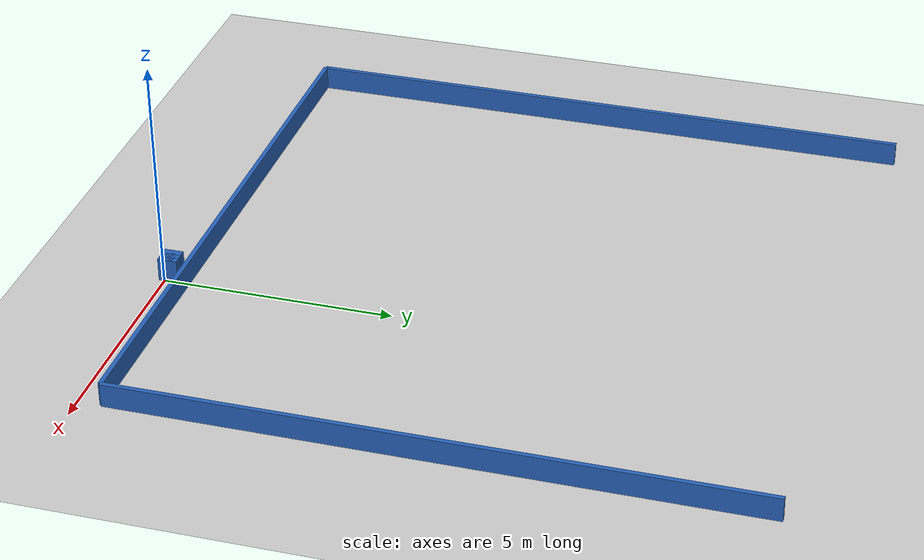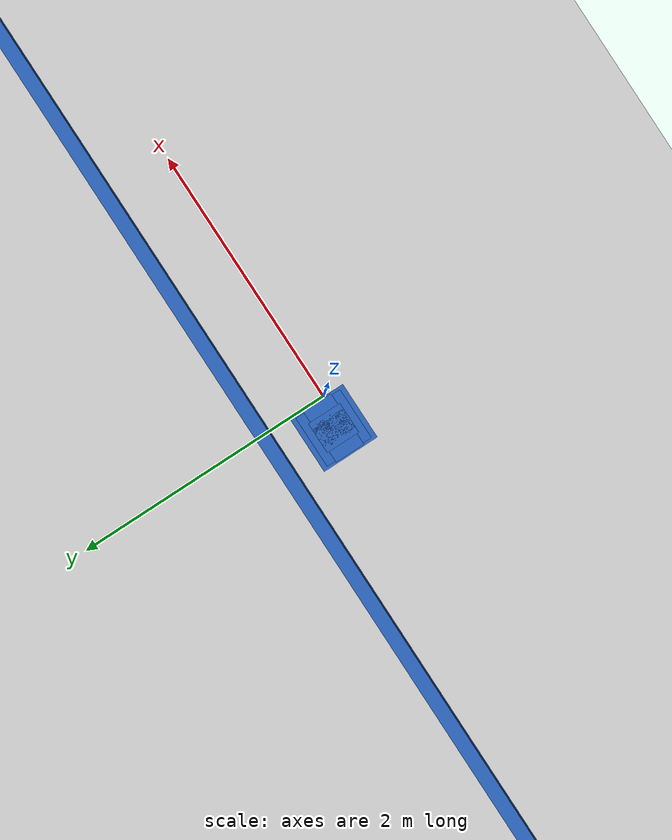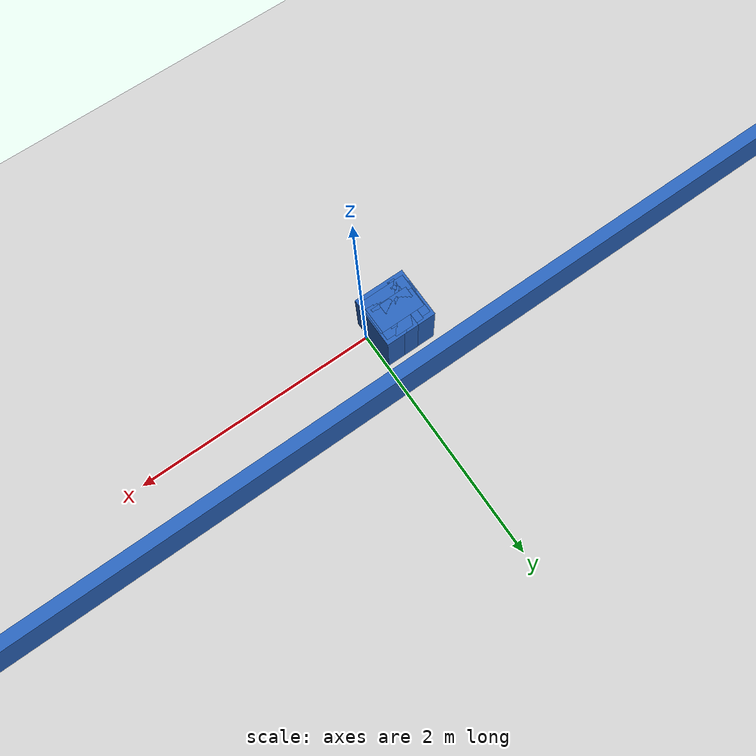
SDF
<?xml version="1.0" ?>
    <sdf version="1.5">
      <world name="default">
        <!-- A global light source -->
        <include>
          <uri>model://sun</uri>
        </include>
        <!-- A ground plane -->
        <include>
          <uri>model://ground_plane</uri>
        </include>

    <model name='libopen_space_final_T2B_79_93'>
      <static>1</static>
      <pose frame=''>-0.225000 0.075000 0.000000 0.000000 0.000000 0.000000</pose>
      <link name='link'>
        <inertial>
          <mass>1</mass>
          <inertia>
            <ixx>0.145833</ixx>
            <ixy>0</ixy>
            <ixz>0</ixz>
            <iyy>0.145833</iyy>
            <iyz>0</iyz>
            <izz>0.125</izz>
          </inertia>
        </inertial>
        <collision name='collision'>
          <geometry>
            <box>
              <size>0.23 0.25 1</size>
            </box>
          </geometry>
          <max_contacts>10</max_contacts>
          <surface>
            <contact>
              <ode/>
            </contact>
            <bounce/>
            <friction>
              <torsional>
                <ode/>
              </torsional>
              <ode/>
            </friction>
          </surface>
        </collision>
        <visual name='visual'>
          <geometry>
            <box>
              <size>0.23 0.25 1</size>
            </box>
          </geometry>
	    <material>
              <ambient>0.152000 0.379000 0.720000 1</ambient>
	      <diffuse>0.152000 0.379000 0.720000 1</diffuse>
          </material>
          <material>
            <script>
              <name>Gazebo/Grey</name>
              <uri>file://media/materials/scripts/gazebo.material</uri>
            </script>
          </material>
        </visual>
        <self_collide>0</self_collide>
        <kinematic>0</kinematic>
        <gravity>1</gravity>
      </link>
      <plugin name='libopen_space_final_T2B_79_93' filename='libopen_space_final_T2B_79_93.so'/>
    </model>

    <model name='libopen_space_final_T2B_119_99'>
      <static>1</static>
      <pose frame=''>-0.225000 0.075000 0.000000 0.000000 0.000000 0.000000</pose>
      <link name='link'>
        <inertial>
          <mass>1</mass>
          <inertia>
            <ixx>0.145833</ixx>
            <ixy>0</ixy>
            <ixz>0</ixz>
            <iyy>0.145833</iyy>
            <iyz>0</iyz>
            <izz>0.125</izz>
          </inertia>
        </inertial>
        <collision name='collision'>
          <geometry>
            <box>
              <size>0.40 0.22 1</size>
            </box>
          </geometry>
          <max_contacts>10</max_contacts>
          <surface>
            <contact>
              <ode/>
            </contact>
            <bounce/>
            <friction>
              <torsional>
                <ode/>
              </torsional>
              <ode/>
            </friction>
          </surface>
        </collision>
        <visual name='visual'>
          <geometry>
            <box>
              <size>0.40 0.22 1</size>
            </box>
          </geometry>
	    <material>
              <ambient>0.152000 0.379000 0.720000 1</ambient>
	      <diffuse>0.152000 0.379000 0.720000 1</diffuse>
          </material>
          <material>
            <script>
              <name>Gazebo/Grey</name>
              <uri>file://media/materials/scripts/gazebo.material</uri>
            </script>
          </material>
        </visual>
        <self_collide>0</self_collide>
        <kinematic>0</kinematic>
        <gravity>1</gravity>
      </link>
      <plugin name='libopen_space_final_T2B_119_99' filename='libopen_space_final_T2B_119_99.so'/>
    </model>

    <model name='libopen_space_final_T2B_85_62'>
      <static>1</static>
      <pose frame=''>-0.225000 0.075000 0.000000 0.000000 0.000000 0.000000</pose>
      <link name='link'>
        <inertial>
          <mass>1</mass>
          <inertia>
            <ixx>0.145833</ixx>
            <ixy>0</ixy>
            <ixz>0</ixz>
            <iyy>0.145833</iyy>
            <iyz>0</iyz>
            <izz>0.125</izz>
          </inertia>
        </inertial>
        <collision name='collision'>
          <geometry>
            <box>
              <size>0.38 0.35 1</size>
            </box>
          </geometry>
          <max_contacts>10</max_contacts>
          <surface>
            <contact>
              <ode/>
            </contact>
            <bounce/>
            <friction>
              <torsional>
                <ode/>
              </torsional>
              <ode/>
            </friction>
          </surface>
        </collision>
        <visual name='visual'>
          <geometry>
            <box>
              <size>0.38 0.35 1</size>
            </box>
          </geometry>
	    <material>
              <ambient>0.152000 0.379000 0.720000 1</ambient>
	      <diffuse>0.152000 0.379000 0.720000 1</diffuse>
          </material>
          <material>
            <script>
              <name>Gazebo/Grey</name>
              <uri>file://media/materials/scripts/gazebo.material</uri>
            </script>
          </material>
        </visual>
        <self_collide>0</self_collide>
        <kinematic>0</kinematic>
        <gravity>1</gravity>
      </link>
      <plugin name='libopen_space_final_T2B_85_62' filename='libopen_space_final_T2B_85_62.so'/>
    </model>

    <model name='libopen_space_final_T2B_80_70'>
      <static>1</static>
      <pose frame=''>-0.225000 0.075000 0.000000 0.000000 0.000000 0.000000</pose>
      <link name='link'>
        <inertial>
          <mass>1</mass>
          <inertia>
            <ixx>0.145833</ixx>
            <ixy>0</ixy>
            <ixz>0</ixz>
            <iyy>0.145833</iyy>
            <iyz>0</iyz>
            <izz>0.125</izz>
          </inertia>
        </inertial>
        <collision name='collision'>
          <geometry>
            <box>
              <size>0.42 0.42 1</size>
            </box>
          </geometry>
          <max_contacts>10</max_contacts>
          <surface>
            <contact>
              <ode/>
            </contact>
            <bounce/>
            <friction>
              <torsional>
                <ode/>
              </torsional>
              <ode/>
            </friction>
          </surface>
        </collision>
        <visual name='visual'>
          <geometry>
            <box>
              <size>0.42 0.42 1</size>
            </box>
          </geometry>
	    <material>
              <ambient>0.152000 0.379000 0.720000 1</ambient>
	      <diffuse>0.152000 0.379000 0.720000 1</diffuse>
          </material>
          <material>
            <script>
              <name>Gazebo/Grey</name>
              <uri>file://media/materials/scripts/gazebo.material</uri>
            </script>
          </material>
        </visual>
        <self_collide>0</self_collide>
        <kinematic>0</kinematic>
        <gravity>1</gravity>
      </link>
      <plugin name='libopen_space_final_T2B_80_70' filename='libopen_space_final_T2B_80_70.so'/>
    </model>

    <model name='libopen_space_final_T2B_127_53'>
      <static>1</static>
      <pose frame=''>-0.225000 0.075000 0.000000 0.000000 0.000000 0.000000</pose>
      <link name='link'>
        <inertial>
          <mass>1</mass>
          <inertia>
            <ixx>0.145833</ixx>
            <ixy>0</ixy>
            <ixz>0</ixz>
            <iyy>0.145833</iyy>
            <iyz>0</iyz>
            <izz>0.125</izz>
          </inertia>
        </inertial>
        <collision name='collision'>
          <geometry>
            <box>
              <size>0.17 0.16 1</size>
            </box>
          </geometry>
          <max_contacts>10</max_contacts>
          <surface>
            <contact>
              <ode/>
            </contact>
            <bounce/>
            <friction>
              <torsional>
                <ode/>
              </torsional>
              <ode/>
            </friction>
          </surface>
        </collision>
        <visual name='visual'>
          <geometry>
            <box>
              <size>0.17 0.16 1</size>
            </box>
          </geometry>
	    <material>
              <ambient>0.152000 0.379000 0.720000 1</ambient>
	      <diffuse>0.152000 0.379000 0.720000 1</diffuse>
          </material>
          <material>
            <script>
              <name>Gazebo/Grey</name>
              <uri>file://media/materials/scripts/gazebo.material</uri>
            </script>
          </material>
        </visual>
        <self_collide>0</self_collide>
        <kinematic>0</kinematic>
        <gravity>1</gravity>
      </link>
      <plugin name='libopen_space_final_T2B_127_53' filename='libopen_space_final_T2B_127_53.so'/>
    </model>

    <model name='libopen_space_final_T2B_67_46'>
      <static>1</static>
      <pose frame=''>-0.225000 0.075000 0.000000 0.000000 0.000000 0.000000</pose>
      <link name='link'>
        <inertial>
          <mass>1</mass>
          <inertia>
            <ixx>0.145833</ixx>
            <ixy>0</ixy>
            <ixz>0</ixz>
            <iyy>0.145833</iyy>
            <iyz>0</iyz>
            <izz>0.125</izz>
          </inertia>
        </inertial>
        <collision name='collision'>
          <geometry>
            <box>
              <size>0.15 0.24 1</size>
            </box>
          </geometry>
          <max_contacts>10</max_contacts>
          <surface>
            <contact>
              <ode/>
            </contact>
            <bounce/>
            <friction>
              <torsional>
                <ode/>
              </torsional>
              <ode/>
            </friction>
          </surface>
        </collision>
        <visual name='visual'>
          <geometry>
            <box>
              <size>0.15 0.24 1</size>
            </box>
          </geometry>
	    <material>
              <ambient>0.152000 0.379000 0.720000 1</ambient>
	      <diffuse>0.152000 0.379000 0.720000 1</diffuse>
          </material>
          <material>
            <script>
              <name>Gazebo/Grey</name>
              <uri>file://media/materials/scripts/gazebo.material</uri>
            </script>
          </material>
        </visual>
        <self_collide>0</self_collide>
        <kinematic>0</kinematic>
        <gravity>1</gravity>
      </link>
      <plugin name='libopen_space_final_T2B_67_46' filename='libopen_space_final_T2B_67_46.so'/>
    </model>

    <model name='libopen_space_final_T2B_66_3'>
      <static>1</static>
      <pose frame=''>-0.225000 0.075000 0.000000 0.000000 0.000000 0.000000</pose>
      <link name='link'>
        <inertial>
          <mass>1</mass>
          <inertia>
            <ixx>0.145833</ixx>
            <ixy>0</ixy>
            <ixz>0</ixz>
            <iyy>0.145833</iyy>
            <iyz>0</iyz>
            <izz>0.125</izz>
          </inertia>
        </inertial>
        <collision name='collision'>
          <geometry>
            <box>
              <size>0.31 0.17 1</size>
            </box>
          </geometry>
          <max_contacts>10</max_contacts>
          <surface>
            <contact>
              <ode/>
            </contact>
            <bounce/>
            <friction>
              <torsional>
                <ode/>
              </torsional>
              <ode/>
            </friction>
          </surface>
        </collision>
        <visual name='visual'>
          <geometry>
            <box>
              <size>0.31 0.17 1</size>
            </box>
          </geometry>
	    <material>
              <ambient>0.152000 0.379000 0.720000 1</ambient>
	      <diffuse>0.152000 0.379000 0.720000 1</diffuse>
          </material>
          <material>
            <script>
              <name>Gazebo/Grey</name>
              <uri>file://media/materials/scripts/gazebo.material</uri>
            </script>
          </material>
        </visual>
        <self_collide>0</self_collide>
        <kinematic>0</kinematic>
        <gravity>1</gravity>
      </link>
      <plugin name='libopen_space_final_T2B_66_3' filename='libopen_space_final_T2B_66_3.so'/>
    </model>

    <model name='libopen_space_final_T2B_126_41'>
      <static>1</static>
      <pose frame=''>-0.225000 0.075000 0.000000 0.000000 0.000000 0.000000</pose>
      <link name='link'>
        <inertial>
          <mass>1</mass>
          <inertia>
            <ixx>0.145833</ixx>
            <ixy>0</ixy>
            <ixz>0</ixz>
            <iyy>0.145833</iyy>
            <iyz>0</iyz>
            <izz>0.125</izz>
          </inertia>
        </inertial>
        <collision name='collision'>
          <geometry>
            <box>
              <size>0.12 0.42 1</size>
            </box>
          </geometry>
          <max_contacts>10</max_contacts>
          <surface>
            <contact>
              <ode/>
            </contact>
            <bounce/>
            <friction>
              <torsional>
                <ode/>
              </torsional>
              <ode/>
            </friction>
          </surface>
        </collision>
        <visual name='visual'>
          <geometry>
            <box>
              <size>0.12 0.42 1</size>
            </box>
          </geometry>
	    <material>
              <ambient>0.152000 0.379000 0.720000 1</ambient>
	      <diffuse>0.152000 0.379000 0.720000 1</diffuse>
          </material>
          <material>
            <script>
              <name>Gazebo/Grey</name>
              <uri>file://media/materials/scripts/gazebo.material</uri>
            </script>
          </material>
        </visual>
        <self_collide>0</self_collide>
        <kinematic>0</kinematic>
        <gravity>1</gravity>
      </link>
      <plugin name='libopen_space_final_T2B_126_41' filename='libopen_space_final_T2B_126_41.so'/>
    </model>

    <model name='libopen_space_final_T2B_112_81'>
      <static>1</static>
      <pose frame=''>-0.225000 0.075000 0.000000 0.000000 0.000000 0.000000</pose>
      <link name='link'>
        <inertial>
          <mass>1</mass>
          <inertia>
            <ixx>0.145833</ixx>
            <ixy>0</ixy>
            <ixz>0</ixz>
            <iyy>0.145833</iyy>
            <iyz>0</iyz>
            <izz>0.125</izz>
          </inertia>
        </inertial>
        <collision name='collision'>
          <geometry>
            <box>
              <size>0.24 0.38 1</size>
            </box>
          </geometry>
          <max_contacts>10</max_contacts>
          <surface>
            <contact>
              <ode/>
            </contact>
            <bounce/>
            <friction>
              <torsional>
                <ode/>
              </torsional>
              <ode/>
            </friction>
          </surface>
        </collision>
        <visual name='visual'>
          <geometry>
            <box>
              <size>0.24 0.38 1</size>
            </box>
          </geometry>
	    <material>
              <ambient>0.152000 0.379000 0.720000 1</ambient>
	      <diffuse>0.152000 0.379000 0.720000 1</diffuse>
          </material>
          <material>
            <script>
              <name>Gazebo/Grey</name>
              <uri>file://media/materials/scripts/gazebo.material</uri>
            </script>
          </material>
        </visual>
        <self_collide>0</self_collide>
        <kinematic>0</kinematic>
        <gravity>1</gravity>
      </link>
      <plugin name='libopen_space_final_T2B_112_81' filename='libopen_space_final_T2B_112_81.so'/>
    </model>

    <model name='libopen_space_final_T2B_83_17'>
      <static>1</static>
      <pose frame=''>-0.225000 0.075000 0.000000 0.000000 0.000000 0.000000</pose>
      <link name='link'>
        <inertial>
          <mass>1</mass>
          <inertia>
            <ixx>0.145833</ixx>
            <ixy>0</ixy>
            <ixz>0</ixz>
            <iyy>0.145833</iyy>
            <iyz>0</iyz>
            <izz>0.125</izz>
          </inertia>
        </inertial>
        <collision name='collision'>
          <geometry>
            <box>
              <size>0.37 0.22 1</size>
            </box>
          </geometry>
          <max_contacts>10</max_contacts>
          <surface>
            <contact>
              <ode/>
            </contact>
            <bounce/>
            <friction>
              <torsional>
                <ode/>
              </torsional>
              <ode/>
            </friction>
          </surface>
        </collision>
        <visual name='visual'>
          <geometry>
            <box>
              <size>0.37 0.22 1</size>
            </box>
          </geometry>
	    <material>
              <ambient>0.152000 0.379000 0.720000 1</ambient>
	      <diffuse>0.152000 0.379000 0.720000 1</diffuse>
          </material>
          <material>
            <script>
              <name>Gazebo/Grey</name>
              <uri>file://media/materials/scripts/gazebo.material</uri>
            </script>
          </material>
        </visual>
        <self_collide>0</self_collide>
        <kinematic>0</kinematic>
        <gravity>1</gravity>
      </link>
      <plugin name='libopen_space_final_T2B_83_17' filename='libopen_space_final_T2B_83_17.so'/>
    </model>

    <model name='libopen_space_final_T2B_71_69'>
      <static>1</static>
      <pose frame=''>-0.225000 0.075000 0.000000 0.000000 0.000000 0.000000</pose>
      <link name='link'>
        <inertial>
          <mass>1</mass>
          <inertia>
            <ixx>0.145833</ixx>
            <ixy>0</ixy>
            <ixz>0</ixz>
            <iyy>0.145833</iyy>
            <iyz>0</iyz>
            <izz>0.125</izz>
          </inertia>
        </inertial>
        <collision name='collision'>
          <geometry>
            <box>
              <size>0.20 0.29 1</size>
            </box>
          </geometry>
          <max_contacts>10</max_contacts>
          <surface>
            <contact>
              <ode/>
            </contact>
            <bounce/>
            <friction>
              <torsional>
                <ode/>
              </torsional>
              <ode/>
            </friction>
          </surface>
        </collision>
        <visual name='visual'>
          <geometry>
            <box>
              <size>0.20 0.29 1</size>
            </box>
          </geometry>
	    <material>
              <ambient>0.152000 0.379000 0.720000 1</ambient>
	      <diffuse>0.152000 0.379000 0.720000 1</diffuse>
          </material>
          <material>
            <script>
              <name>Gazebo/Grey</name>
              <uri>file://media/materials/scripts/gazebo.material</uri>
            </script>
          </material>
        </visual>
        <self_collide>0</self_collide>
        <kinematic>0</kinematic>
        <gravity>1</gravity>
      </link>
      <plugin name='libopen_space_final_T2B_71_69' filename='libopen_space_final_T2B_71_69.so'/>
    </model>

        <model name='bottom_wall'>
          <static>1</static>
          <pose frame=''>-2.25 0.5 0.000000 0.000000 0.000000 1.57079632</pose>
          <link name='link'>
            <inertial>
            <mass>1</mass>
            <inertia>
              <ixx>0.145833</ixx>
              <ixy>0</ixy>
              <ixz>0</ixz>
              <iyy>0.145833</iyy>
              <iyz>0</iyz>
              <izz>0.125</izz>
            </inertia>
            </inertial>
            <collision name='collision'>
            <geometry>
              <box>
              <size>0.1 13.5 1</size>
              </box>
            </geometry>
            <max_contacts>10</max_contacts>
            <surface>
              <contact>
              <ode/>
              </contact>
              <bounce/>
              <friction>
              <torsional>
                <ode/>
              </torsional>
              <ode/>
              </friction>
            </surface>
            </collision>
            <visual name='visual'>
            <geometry>
              <box>
              <size>0.1 13.5 1</size>
              </box>
            </geometry>
            <material>
              <ambient>0.152000 0.379000 0.720000 1</ambient>
            <diffuse>0.152000 0.379000 0.720000 1</diffuse>
            </material>
            <material>
              <script>
              <name>Gazebo/Grey</name>
              <uri>file://media/materials/scripts/gazebo.material</uri>
              </script>
            </material>
            </visual>
            <self_collide>0</self_collide>
            <kinematic>0</kinematic>
            <gravity>1</gravity>
          </link>
        </model>

        <model name='left_wall'>
          <static>1</static>
          <pose frame=''>-9 7.25 0.000000 0.000000 0.000000 0.000000</pose>
          <link name='link'>
            <inertial>
            <mass>1</mass>
            <inertia>
              <ixx>0.145833</ixx>
              <ixy>0</ixy>
              <ixz>0</ixz>
              <iyy>0.145833</iyy>
              <iyz>0</iyz>
              <izz>0.125</izz>
            </inertia>
            </inertial>
            <collision name='collision'>
            <geometry>
              <box>
              <size>0.1 13.5 1</size>
              </box>
            </geometry>
            <max_contacts>10</max_contacts>
            <surface>
              <contact>
              <ode/>
              </contact>
              <bounce/>
              <friction>
              <torsional>
                <ode/>
              </torsional>
              <ode/>
              </friction>
            </surface>
            </collision>
            <visual name='visual'>
            <geometry>
              <box>
              <size>0.1 13.5 1</size>
              </box>
            </geometry>
            <material>
              <ambient>0.152000 0.379000 0.720000 1</ambient>
            <diffuse>0.152000 0.379000 0.720000 1</diffuse>
            </material>
            <material>
              <script>
              <name>Gazebo/Grey</name>
              <uri>file://media/materials/scripts/gazebo.material</uri>
              </script>
            </material>
            </visual>
            <self_collide>0</self_collide>
            <kinematic>0</kinematic>
            <gravity>1</gravity>
          </link>
        </model>

        <model name='right_wall'>
          <static>1</static>
          <pose frame=''>4.5 7.25 0.000000 0.000000 0.000000 0.000000</pose>
          <link name='link'>
            <inertial>
            <mass>1</mass>
            <inertia>
              <ixx>0.145833</ixx>
              <ixy>0</ixy>
              <ixz>0</ixz>
              <iyy>0.145833</iyy>
              <iyz>0</iyz>
              <izz>0.125</izz>
            </inertia>
            </inertial>
            <collision name='collision'>
            <geometry>
              <box>
              <size>0.1 13.5 1</size>
              </box>
            </geometry>
            <max_contacts>10</max_contacts>
            <surface>
              <contact>
              <ode/>
              </contact>
              <bounce/>
              <friction>
              <torsional>
                <ode/>
              </torsional>
              <ode/>
              </friction>
            </surface>
            </collision>
            <visual name='visual'>
            <geometry>
              <box>
              <size>0.1 13.5 1</size>
              </box>
            </geometry>
            <material>
              <ambient>0.152000 0.379000 0.720000 1</ambient>
            <diffuse>0.152000 0.379000 0.720000 1</diffuse>
            </material>
            <material>
              <script>
              <name>Gazebo/Grey</name>
              <uri>file://media/materials/scripts/gazebo.material</uri>
              </script>
            </material>
            </visual>
            <self_collide>0</self_collide>
            <kinematic>0</kinematic>
            <gravity>1</gravity>
          </link>
        </model>

      </world>
    </sdf>"
